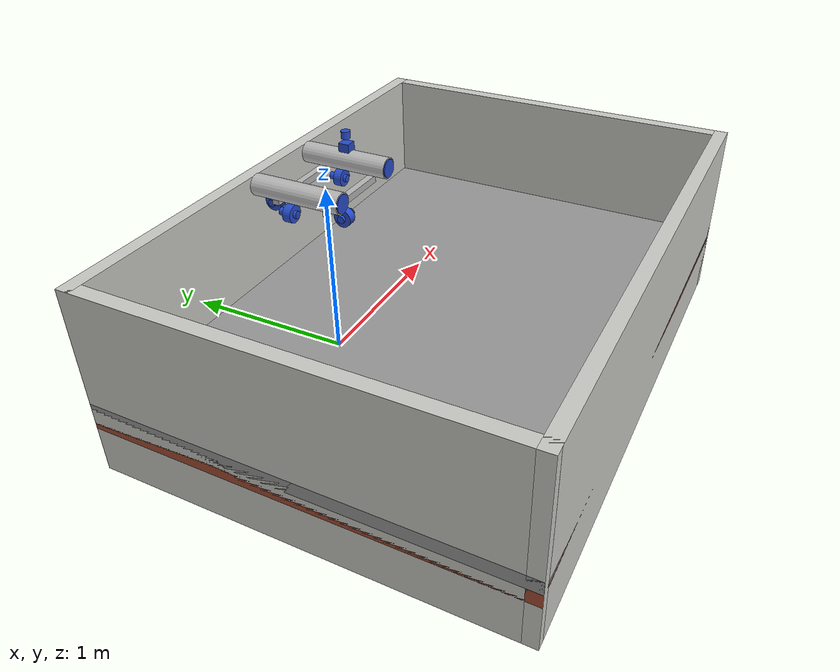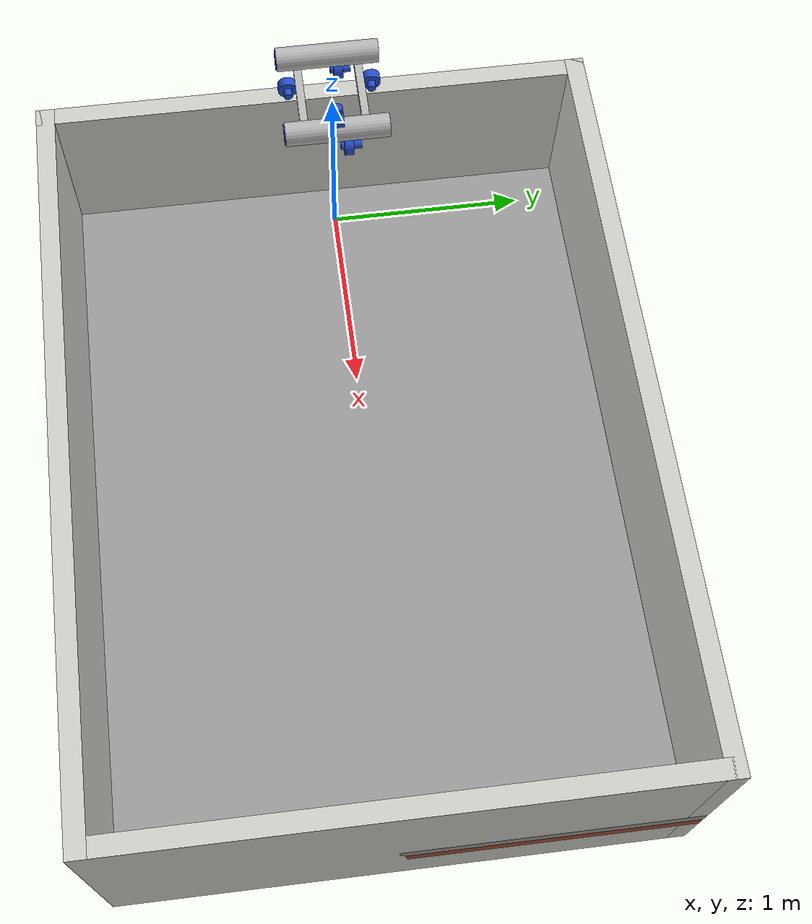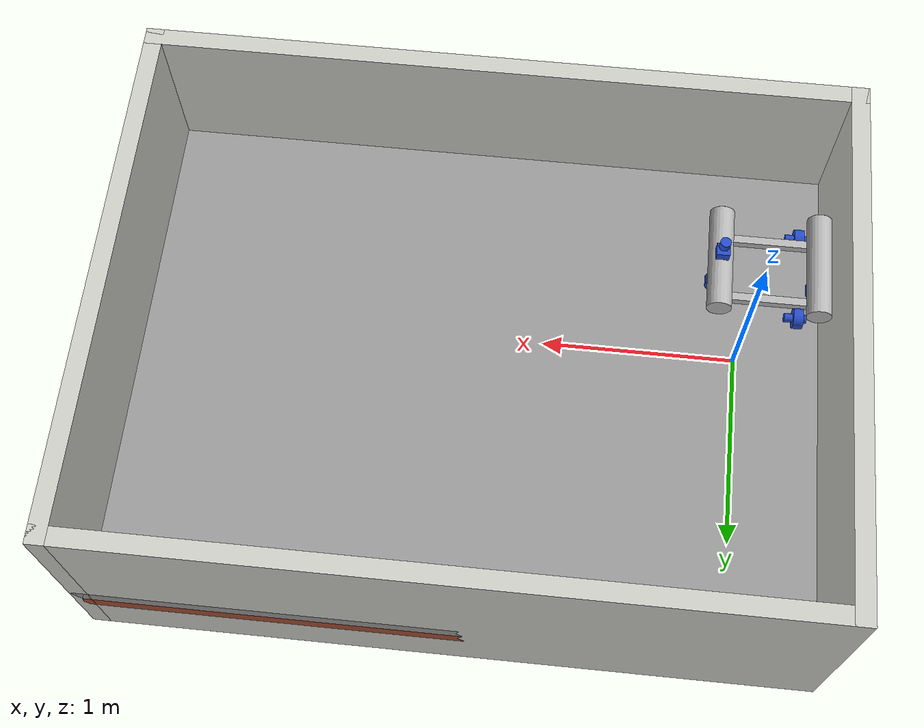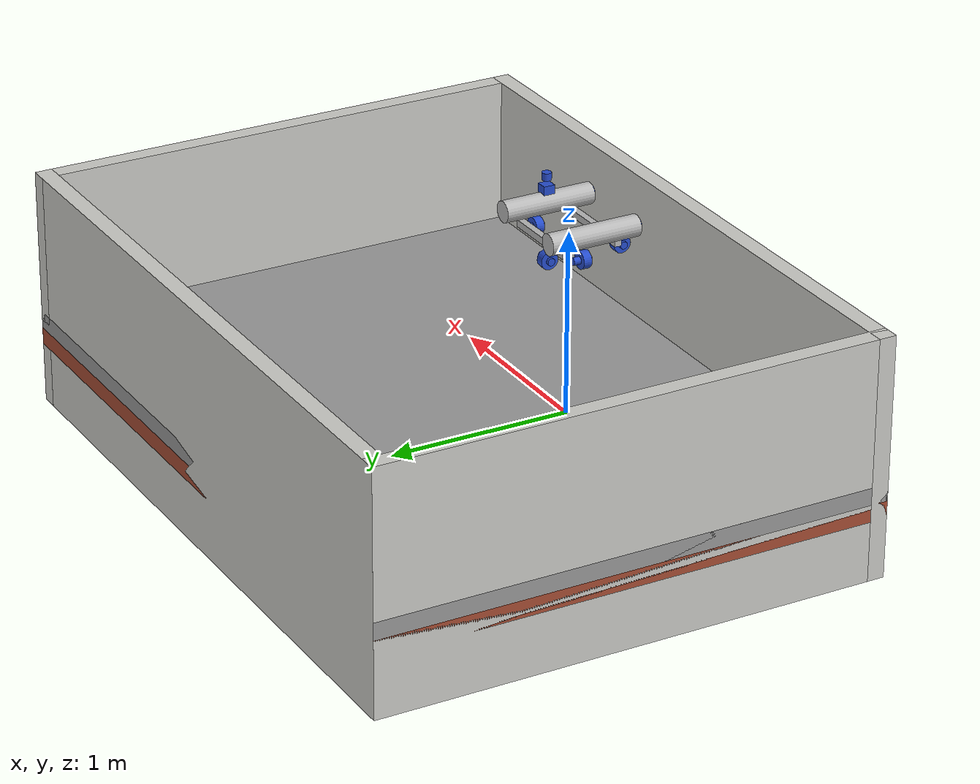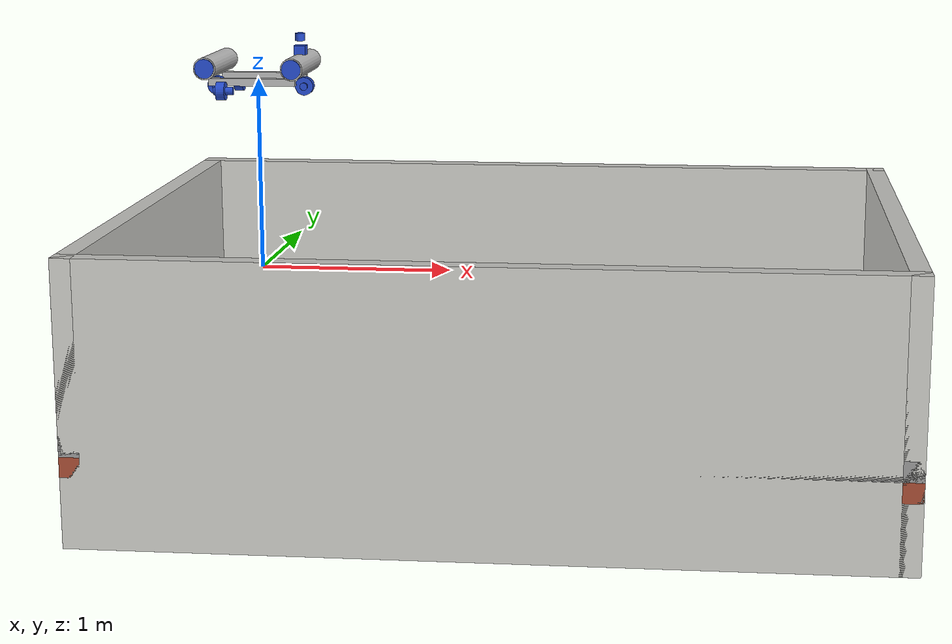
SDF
<sdf version="1.6">
 <world name="underwater">
  <light name="sun" type="directional">
   <pose>0 0 10 0 -0 0</pose>
   <diffuse>0.8 0.8 0.8 1</diffuse>
   <specular>0.2 0.2 0.2 1</specular>
   <attenuation>
    <range>1000</range>
    <constant>0.9</constant>
    <linear>0.01</linear>
    <quadratic>0.001</quadratic>
   </attenuation>
   <direction>-0.5 0.1 -0.9</direction>
  </light>
  <model name="test_pond_floor">
   <pose>1.35 -0.05 -0.7 0 -0 0</pose>
   <link name="Floor_1">
    <collision name="Floor_1_Collision">
     <geometry><box><size>4 3 0.1</size></box></geometry>
     <pose>0 0 0.05 0 -0 0</pose>
    </collision>
    <visual name="Floor_1_Visual">
     <pose>0 0 0.05 0 -0 0</pose>
     <geometry><box><size>4 3 0.1</size></box></geometry>
     <material>
      <script><uri>file://media/materials/scripts/gazebo.material</uri><name>Gazebo/Grey</name></script>
      <ambient>1 1 1 1</ambient>
     </material>
     <meta><layer>1</layer></meta>
    </visual>
    <pose>0 -0 0.1 0 -0 0</pose>
   </link>
   <link name="Wall_11">
    <collision name="Wall_11_Collision">
     <geometry><box><size>4 0.1 0.1</size></box></geometry>
     <pose>0 0 0.05 0 -0 0</pose>
    </collision>
    <visual name="Wall_11_Visual">
     <pose>0 0 0.05 0 -0 0</pose>
     <geometry><box><size>4 0.1 0.1</size></box></geometry>
     <material>
      <script><uri>file://media/materials/scripts/gazebo.material</uri><name>Gazebo/Bricks</name></script>
      <ambient>1 1 1 1</ambient>
     </material>
     <meta><layer>0</layer></meta>
    </visual>
    <pose>0 1.45 0 0 -0 0</pose>
   </link>
   <link name="Wall_13">
    <collision name="Wall_13_Collision">
     <geometry><box><size>3 0.1 0.1</size></box></geometry>
     <pose>0 0 0.05 0 -0 0</pose>
    </collision>
    <visual name="Wall_13_Visual">
     <pose>0 0 0.05 0 -0 0</pose>
     <geometry><box><size>3 0.1 0.1</size></box></geometry>
     <material>
      <script><uri>file://media/materials/scripts/gazebo.material</uri><name>Gazebo/Bricks</name></script>
      <ambient>1 1 1 1</ambient>
     </material>
     <meta><layer>0</layer></meta>
    </visual>
    <pose>1.95 -0 0 0 -0 -1.5708</pose>
   </link>
   <link name="Wall_15">
    <collision name="Wall_15_Collision">
     <geometry><box><size>3 0.1 0.1</size></box></geometry>
     <pose>0 0 0.05 0 -0 0</pose>
    </collision>
    <visual name="Wall_15_Visual">
     <pose>0 0 0.05 0 -0 0</pose>
     <geometry><box><size>3 0.1 0.1</size></box></geometry>
     <material>
      <script><uri>file://media/materials/scripts/gazebo.material</uri><name>Gazebo/Grey</name></script>
      <ambient>1 1 1 1</ambient>
     </material>
     <meta><layer>1</layer></meta>
    </visual>
    <pose>-1.95 -0 0.1 0 -0 1.5708</pose>
   </link>
   <link name="Wall_16">
    <collision name="Wall_16_Collision">
     <geometry><box><size>4 0.1 0.1</size></box></geometry>
     <pose>0 0 0.05 0 -0 0</pose>
    </collision>
    <visual name="Wall_16_Visual">
     <pose>0 0 0.05 0 -0 0</pose>
     <geometry><box><size>4 0.1 0.1</size></box></geometry>
     <material>
      <script><uri>file://media/materials/scripts/gazebo.material</uri><name>Gazebo/Grey</name></script>
      <ambient>1 1 1 1</ambient>
     </material>
     <meta><layer>1</layer></meta>
    </visual>
    <pose>0 -1.45 0.1 0 -0 0</pose>
   </link>
   <link name="Wall_17">
    <collision name="Wall_17_Collision">
     <geometry><box><size>4 0.1 0.1</size></box></geometry>
     <pose>0 0 0.05 0 -0 0</pose>
    </collision>
    <visual name="Wall_17_Visual">
     <pose>0 0 0.05 0 -0 0</pose>
     <geometry><box><size>4 0.1 0.1</size></box></geometry>
     <material>
      <script><uri>file://media/materials/scripts/gazebo.material</uri><name>Gazebo/Grey</name></script>
      <ambient>1 1 1 1</ambient>
     </material>
     <meta><layer>1</layer></meta>
    </visual>
    <pose>0 1.45 0.1 0 -0 0</pose>
   </link>
   <link name="Wall_18">
    <collision name="Wall_18_Collision">
     <geometry><box><size>3 0.1 0.1</size></box></geometry>
     <pose>0 0 0.05 0 -0 0</pose>
    </collision>
    <visual name="Wall_18_Visual">
     <pose>0 0 0.05 0 -0 0</pose>
     <geometry><box><size>3 0.1 0.1</size></box></geometry>
     <material>
      <script><uri>file://media/materials/scripts/gazebo.material</uri><name>Gazebo/Grey</name></script>
      <ambient>1 1 1 1</ambient>
     </material>
     <meta><layer>1</layer></meta>
    </visual>
    <pose>1.95 -0 0.1 0 -0 -1.5708</pose>
   </link>
   <link name="Wall_19">
    <collision name="Wall_19_Collision">
     <geometry><box><size>3 0.1 1.4</size></box></geometry>
     <pose>0 0 0.25 0 -0 0</pose>
    </collision>
    <visual name="Wall_19_Visual">
     <pose>0 0 0.25 0 -0 0</pose>
     <geometry><box><size>3 0.1 1.4</size></box></geometry>
     <material>
      <script><uri>file://media/materials/scripts/gazebo.material</uri><name>Gazebo/CeilingTiled</name></script>
      <ambient>1 1 1 1</ambient>
     </material>
     <meta><layer>1</layer></meta>
    </visual>
    <pose>-1.95 -0 0.1 0 -0 1.5708</pose>
   </link>
   <link name="Wall_21">
    <collision name="Wall_21_Collision">
     <geometry><box><size>4 0.1 1.4</size></box></geometry>
     <pose>0 0 0.25 0 -0 0</pose>
    </collision>
    <visual name="Wall_21_Visual">
     <pose>0 0 0.25 0 -0 0</pose>
     <geometry><box><size>4 0.1 1.4</size></box></geometry>
     <material>
      <script><uri>file://media/materials/scripts/gazebo.material</uri><name>Gazebo/CeilingTiled</name></script>
      <ambient>1 1 1 1</ambient>
     </material>
     <meta><layer>1</layer></meta>
    </visual>
    <pose>0 -1.45 0.1 0 -0 0</pose>
   </link>
   <link name="Wall_23">
    <collision name="Wall_23_Collision">
     <geometry><box><size>4 0.1 1.4</size></box></geometry>
     <pose>0 0 0.25 0 -0 0</pose>
    </collision>
    <visual name="Wall_23_Visual">
     <pose>0 0 0.25 0 -0 0</pose>
     <geometry><box><size>4 0.1 1.4</size></box></geometry>
     <material>
      <script><uri>file://media/materials/scripts/gazebo.material</uri><name>Gazebo/CeilingTiled</name></script>
      <ambient>1 1 1 1</ambient>
     </material>
     <meta><layer>1</layer></meta>
    </visual>
    <pose>0 1.45 0.1 0 -0 3.14159</pose>
   </link>
   <link name="Wall_25">
    <collision name="Wall_25_Collision">
     <geometry><box><size>3 0.1 1.4</size></box></geometry>
     <pose>0 0 0.25 0 -0 0</pose>
    </collision>
    <visual name="Wall_25_Visual">
     <pose>0 0 0.25 0 -0 0</pose>
     <geometry><box><size>3 0.1 1.4</size></box></geometry>
     <material>
      <script><uri>file://media/materials/scripts/gazebo.material</uri><name>Gazebo/CeilingTiled</name></script>
      <ambient>1 1 1 1</ambient>
     </material>
     <meta><layer>1</layer></meta>
    </visual>
    <pose>1.95 -0 0.1 0 -0 1.5708</pose>
   </link>
   <link name="Wall_7">
    <collision name="Wall_7_Collision">
     <geometry><box><size>3 0.1 0.1</size></box></geometry>
     <pose>0 0 0.05 0 -0 0</pose>
    </collision>
    <visual name="Wall_7_Visual">
     <pose>0 0 0.05 0 -0 0</pose>
     <geometry><box><size>3 0.1 0.1</size></box></geometry>
     <material>
      <script><uri>file://media/materials/scripts/gazebo.material</uri><name>Gazebo/Bricks</name></script>
      <ambient>1 1 1 1</ambient>
     </material>
     <meta><layer>0</layer></meta>
    </visual>
    <pose>-1.95 -0 0 0 -0 1.5708</pose>
   </link>
   <link name="Wall_9">
    <collision name="Wall_9_Collision">
     <geometry><box><size>4 0.1 0.1</size></box></geometry>
     <pose>0 0 0.05 0 -0 0</pose>
    </collision>
    <visual name="Wall_9_Visual">
     <pose>0 0 0.05 0 -0 0</pose>
     <geometry><box><size>4 0.1 0.1</size></box></geometry>
     <material>
      <script><uri>file://media/materials/scripts/gazebo.material</uri><name>Gazebo/Bricks</name></script>
      <ambient>1 1 1 1</ambient>
     </material>
     <meta><layer>0</layer></meta>
    </visual>
    <pose>0 -1.45 0 0 -0 0</pose>
   </link>
   <static>1</static>
  </model>
  <plugin name="freefloating_gazebo_fluid" filename="libfreefloating_gazebo_fluid.so">
   <descriptionParam>robot_description</descriptionParam>
   <fluidTopic>current</fluidTopic>
   <alwaysOn>1</alwaysOn>
   <surface>0 0 0</surface>
   <updateRate>.001</updateRate>
  </plugin>
  <gravity>0 0 -9.8</gravity>
  <magnetic_field>6e-06 2.3e-05 -4.2e-05</magnetic_field>
  <atmosphere type="adiabatic"/>
  <physics name="default_physics" default="0" type="ode">
   <max_step_size>0.001</max_step_size>
   <real_time_factor>1</real_time_factor>
   <real_time_update_rate>1000</real_time_update_rate>
  </physics>
  <scene><ambient>0.4 0.4 0.4 1</ambient><background>0.7 0.7 0.7 1</background><shadows>1</shadows></scene>
  <spherical_coordinates>
   <surface_model>EARTH_WGS84</surface_model>
   <latitude_deg>0</latitude_deg>
   <longitude_deg>0</longitude_deg>
   <elevation>0</elevation>
   <heading_deg>0</heading_deg>
  </spherical_coordinates>
  <model name="mallard">
   <link name="base_link">
    <inertial>
     <pose>0.008227 -0.003656 -0.013172 0 -0 0</pose>
     <mass>10.94</mass>
     <inertia>
      <ixx>0.189592</ixx>
      <ixy>0.00642093</ixy>
      <ixz>-0.0129665</ixz>
      <iyy>0.281273</iyy>
      <iyz>0.00356687</iyz>
      <izz>0.431538</izz>
     </inertia>
    </inertial>
    <collision name="base_link_fixed_joint_lump__mallard_box_collision">
     <pose>0 0 0.057 0 -0 0</pose>
     <geometry><box><size>0.564 0.5 0.152</size></box></geometry>
    </collision>
    <visual name="base_link_fixed_joint_lump__r_channel_visual_visual">
     <pose>0 -0.15 0 0 -0 0</pose>
     <geometry><box><size>0.45 0.038 0.038</size></box></geometry>
    </visual>
    <visual name="base_link_fixed_joint_lump__l_channel_visual_visual_1">
     <pose>0 0.15 0 0 -0 0</pose>
     <geometry><box><size>0.45 0.038 0.038</size></box></geometry>
    </visual>
    <visual name="base_link_fixed_joint_lump__front_tube_visual_visual_2">
     <pose>0.225 0 0.076 1.5707 -0 0</pose>
     <geometry><cylinder><length>0.5</length><radius>0.057</radius></cylinder></geometry>
    </visual>
    <visual name="base_link_fixed_joint_lump__rear_tube_visual_visual_3">
     <pose>-0.225 0 0.076 1.5707 -0 0</pose>
     <geometry><cylinder><length>0.5</length><radius>0.057</radius></cylinder></geometry>
    </visual>
    <visual name="base_link_fixed_joint_lump__ballast_1_visual_4">
     <pose>0.225 -0.25 0.076 1.5708 -0 0</pose>
     <geometry><cylinder><length>0.01</length><radius>0.05</radius></cylinder></geometry>
     <material>
      <script><name>Gazebo/Blue</name><uri>file://media/materials/scripts/gazebo.material</uri></script>
     </material>
    </visual>
    <visual name="base_link_fixed_joint_lump__ballast_2_visual_5">
     <pose>-0.225 -0.25 0.076 1.5708 -0 0</pose>
     <geometry><cylinder><length>0.01</length><radius>0.05</radius></cylinder></geometry>
     <material>
      <script><name>Gazebo/Blue</name><uri>file://media/materials/scripts/gazebo.material</uri></script>
     </material>
    </visual>
    <visual name="base_link_fixed_joint_lump__lidar_body_visual_6">
     <pose>0.225 0 0.152 0 -0 0</pose>
     <geometry><box><size>0.06 0.061 0.048</size></box></geometry>
     <material>
      <script><name>Gazebo/Blue</name><uri>file://media/materials/scripts/gazebo.material</uri></script>
     </material>
    </visual>
    <visual name="base_link_fixed_joint_lump__urg_lidar_visual_7">
     <pose>0.225 0 0.22 0 -0 0</pose>
     <geometry><cylinder><length>0.04</length><radius>0.025</radius></cylinder></geometry>
     <material>
      <script><name>Gazebo/Blue</name><uri>file://media/materials/scripts/gazebo.material</uri></script>
     </material>
    </visual>
    <sensor name="head_hokuyo_sensor" type="ray">
     <visualize>1</visualize>
     <update_rate>100</update_rate>
     <ray>
      <scan>
       <horizontal>
        <samples>100</samples>
        <resolution>1</resolution>
        <min_angle>-2.35619</min_angle>
        <max_angle>2.35619</max_angle>
       </horizontal>
       <vertical><samples>1</samples><min_angle>0</min_angle><max_angle>0</max_angle></vertical>
      </scan>
      <range><min>0.01</min><max>10</max><resolution>0.005</resolution></range>
      <noise><type>none</type><mean>0</mean><stddev>0</stddev></noise>
     </ray>
     <plugin name="gazebo_ros_head_hokuyo_controller" filename="libgazebo_ros_laser.so">
      <robotNamespace>/</robotNamespace>
      <alwaysOn>1</alwaysOn>
      <update_rate>100</update_rate>
      <topicName>mallard/lidar_data</topicName>
      <frameName>lidar_body</frameName>
      <bodyName>lidar_body</bodyName>
     </plugin>
     <pose>0.225 0 0.22 0 -0 0</pose>
    </sensor>
   </link>
   <link name="x_thr_left">
    <pose>-0.138 0.207 -0.041 3.14159 -1.57079 3.14159</pose>
    <inertial>
     <mass>0.3</mass>
     <inertia><ixx>0.001</ixx><ixy>0</ixy><ixz>0</ixz><iyy>0.001</iyy><iyz>0</iyz><izz>0.001</izz></inertia>
    </inertial>
    <visual name="x_thr_left_1_visual">
     <geometry><cylinder><length>0.1</length><radius>0.02</radius></cylinder></geometry>
     <material>
      <script><name>Gazebo/Blue</name><uri>file://media/materials/scripts/gazebo.material</uri></script>
     </material>
    </visual>
    <visual name="x_thr_left_2_visual_1">
     <pose>0 0 0.01125 0 -0 0</pose>
     <geometry><cylinder><length>0.045</length><radius>0.047</radius></cylinder></geometry>
     <material>
      <script><name>Gazebo/Blue</name><uri>file://media/materials/scripts/gazebo.material</uri></script>
     </material>
    </visual>
   </link>
   <joint name="x_thr_left" type="revolute">
    <child>x_thr_left</child>
    <parent>base_link</parent>
    <axis>
     <xyz>0 1 0</xyz>
     <limit><lower>-3.14159</lower><upper>3.14159</upper><effort>30</effort><velocity>5</velocity></limit>
     <dynamics>
      <damping>1</damping>
      <friction>0</friction>
      <spring_reference>0</spring_reference>
      <spring_stiffness>0</spring_stiffness>
     </dynamics>
     <use_parent_model_frame>1</use_parent_model_frame>
    </axis>
    <physics><ode><limit><cfm>0</cfm><erp>0.2</erp></limit></ode></physics>
   </joint>
   <link name="x_thr_right">
    <pose>-0.138 -0.207 -0.041 3.14159 -1.57079 3.14159</pose>
    <inertial>
     <mass>0.3</mass>
     <inertia><ixx>0.001</ixx><ixy>0</ixy><ixz>0</ixz><iyy>0.001</iyy><iyz>0</iyz><izz>0.001</izz></inertia>
    </inertial>
    <visual name="x_thr_right_1_visual">
     <geometry><cylinder><length>0.1</length><radius>0.02</radius></cylinder></geometry>
     <material>
      <script><name>Gazebo/Blue</name><uri>file://media/materials/scripts/gazebo.material</uri></script>
     </material>
    </visual>
    <visual name="x_thr_right_2_visual_1">
     <pose>0 0 0.01125 0 -0 0</pose>
     <geometry><cylinder><length>0.045</length><radius>0.047</radius></cylinder></geometry>
     <material>
      <script><name>Gazebo/Blue</name><uri>file://media/materials/scripts/gazebo.material</uri></script>
     </material>
    </visual>
   </link>
   <joint name="x_thr_right" type="revolute">
    <child>x_thr_right</child>
    <parent>base_link</parent>
    <axis>
     <xyz>0 1 0</xyz>
     <limit><lower>-3.14159</lower><upper>3.14159</upper><effort>30</effort><velocity>5</velocity></limit>
     <dynamics>
      <damping>1</damping>
      <friction>0</friction>
      <spring_reference>0</spring_reference>
      <spring_stiffness>0</spring_stiffness>
     </dynamics>
     <use_parent_model_frame>1</use_parent_model_frame>
    </axis>
    <physics><ode><limit><cfm>0</cfm><erp>0.2</erp></limit></ode></physics>
   </joint>
   <link name="y_thr_left">
    <pose>0.233 0.064 -0.041 -1.57079 1.57079 3.14159</pose>
    <inertial>
     <mass>0.3</mass>
     <inertia><ixx>0.001</ixx><ixy>0</ixy><ixz>0</ixz><iyy>0.001</iyy><iyz>0</iyz><izz>0.001</izz></inertia>
    </inertial>
    <visual name="y_thr_left_1_visual">
     <geometry><cylinder><length>0.1</length><radius>0.02</radius></cylinder></geometry>
     <material>
      <script><name>Gazebo/Blue</name><uri>file://media/materials/scripts/gazebo.material</uri></script>
     </material>
    </visual>
    <visual name="y_thr_left_2_visual_1">
     <pose>0 0 0.01125 0 -0 0</pose>
     <geometry><cylinder><length>0.045</length><radius>0.047</radius></cylinder></geometry>
     <material>
      <script><name>Gazebo/Blue</name><uri>file://media/materials/scripts/gazebo.material</uri></script>
     </material>
    </visual>
   </link>
   <joint name="y_thr_left" type="revolute">
    <child>y_thr_left</child>
    <parent>base_link</parent>
    <axis>
     <xyz>1 0 -0</xyz>
     <limit><lower>-3.14159</lower><upper>3.14159</upper><effort>30</effort><velocity>5</velocity></limit>
     <dynamics>
      <damping>1</damping>
      <friction>0</friction>
      <spring_reference>0</spring_reference>
      <spring_stiffness>0</spring_stiffness>
     </dynamics>
     <use_parent_model_frame>1</use_parent_model_frame>
    </axis>
    <physics><ode><limit><cfm>0</cfm><erp>0.2</erp></limit></ode></physics>
   </joint>
   <link name="y_thr_right">
    <pose>-0.233 0.064 -0.041 -1.57079 1.57079 3.14159</pose>
    <inertial>
     <mass>0.3</mass>
     <inertia><ixx>0.001</ixx><ixy>0</ixy><ixz>0</ixz><iyy>0.001</iyy><iyz>0</iyz><izz>0.001</izz></inertia>
    </inertial>
    <visual name="y_thr_right_1_visual">
     <geometry><cylinder><length>0.1</length><radius>0.02</radius></cylinder></geometry>
     <material>
      <script><name>Gazebo/Blue</name><uri>file://media/materials/scripts/gazebo.material</uri></script>
     </material>
    </visual>
    <visual name="y_thr_right_2_visual_1">
     <pose>0 0 0.01125 0 -0 0</pose>
     <geometry><cylinder><length>0.045</length><radius>0.047</radius></cylinder></geometry>
     <material>
      <script><name>Gazebo/Blue</name><uri>file://media/materials/scripts/gazebo.material</uri></script>
     </material>
    </visual>
   </link>
   <joint name="y_thr_right" type="revolute">
    <child>y_thr_right</child>
    <parent>base_link</parent>
    <axis>
     <xyz>1 0 -0</xyz>
     <limit><lower>-3.14159</lower><upper>3.14159</upper><effort>30</effort><velocity>5</velocity></limit>
     <dynamics>
      <damping>1</damping>
      <friction>0</friction>
      <spring_reference>0</spring_reference>
      <spring_stiffness>0</spring_stiffness>
     </dynamics>
     <use_parent_model_frame>1</use_parent_model_frame>
    </axis>
    <physics><ode><limit><cfm>0</cfm><erp>0.2</erp></limit></ode></physics>
   </joint>
   <static>0</static>
   <plugin name="freefloating_gazebo_control" filename="libfreefloating_gazebo_control.so">
    <switchService>switch</switchService>
    <updateRate>100</updateRate>
    <link>base_link</link>
    <thruster><effort>2</effort><name>x_thr_left</name></thruster>
    <thruster><effort>2</effort><name>x_thr_right</name></thruster>
    <thruster><effort>2</effort><name>y_thr_left</name></thruster>
    <thruster><effort>2</effort><name>y_thr_right</name></thruster>
    <thruster><map>0 1 0 0 0 0</map><effort>2</effort></thruster>
    <robotNamespace>/mallard/</robotNamespace>
   </plugin>
   <pose>0 0 1 0 -0 0</pose>
  </model>
 </world>
</sdf>
